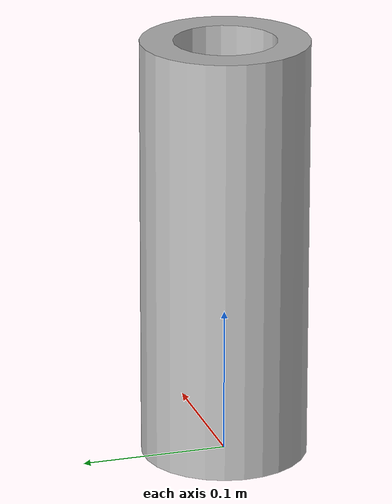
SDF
<sdf version='1.6'>
  <model name='Cone25'>
    <link name='Cone25'>
      <pose frame=''>0 0 0 0 -0 0</pose>
      <inertial>
        <pose frame=''>0 0 0.14605 0 -0 0</pose>
        <mass>14.647</mass>
        <inertia>
          <ixx>0.120572</ixx>
          <ixy>1.05134e-34</ixy>
          <ixz>5.17909e-34</ixz>
          <iyy>0.120572</iyy>
          <iyz>-7.42959e-18</iyz>
          <izz>0.0328531</izz>
        </inertia>
      </inertial>
      <collision name='Cone25_collision'>
	<!-- Change max_vel and/or min_depth to keep cones from "bouncing" -->
	<surface>
	  <contact>
	    <ode>
	      <min_depth>0.001</min_depth>
	    </ode>
	  </contact>
	</surface>
        <pose frame=''>0 0 0 1.5708 -0 0</pose>
        <geometry>
          <mesh>
            <scale>1 1 1</scale>
            <uri>model://Cone25/meshes/Cone25.STL</uri>
          </mesh>
        </geometry>
      </collision>
      <visual name='Cone25_visual'>
        <pose frame=''>0 0 0 1.5708 -0 0</pose>
        <geometry>
          <mesh>
            <scale>1 1 1</scale>
            <uri>model://Cone25/meshes/Cone25.STL</uri>
          </mesh>
        </geometry>
      </visual>
    </link>
  </model>
</sdf>
